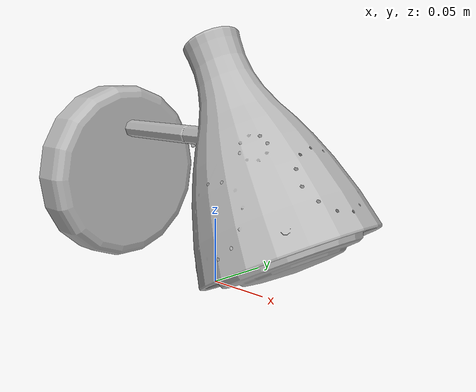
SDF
<?xml version='1.0'?>
<sdf version='1.4'>
  <model name='s__1024'>
    <pose>0 0 0 0 0 0</pose>
    <static>true</static>
    <link name='link'>
      <collision name='collision'>
        <pose>0 0 0 0 0 0</pose>
        <geometry>
          <box>
            <size>0.27 0.15 2</size>
          </box>
        </geometry>
      </collision>
      <visual name='visual'>
        <pose>0 0 0 0 0 0</pose>
        <geometry>
          <mesh><uri>model://s__1024/s__1024.dae</uri></mesh>
        </geometry>
      </visual>
    </link>
  </model>
</sdf>
